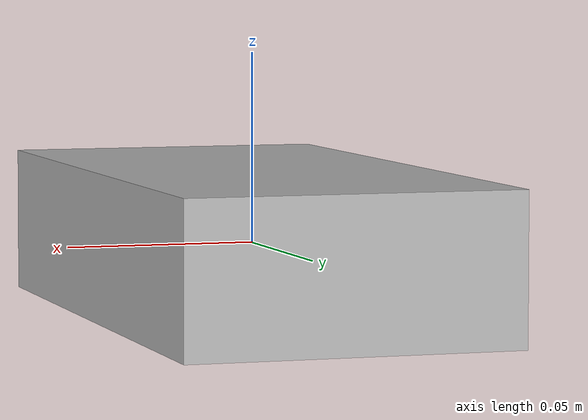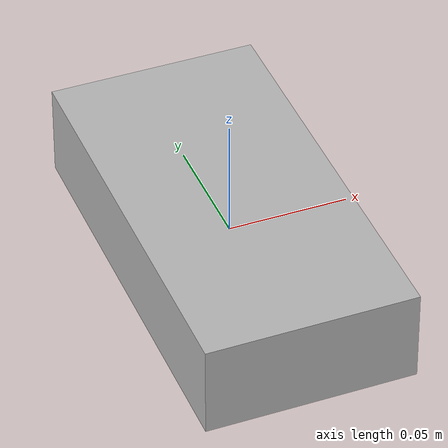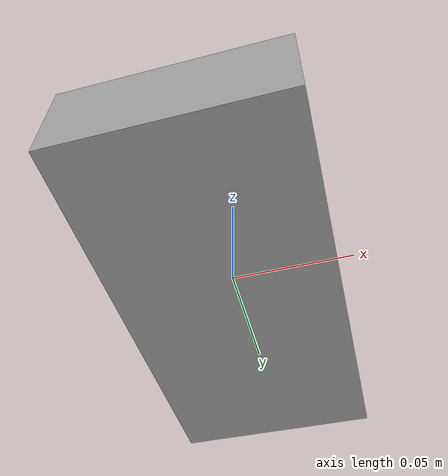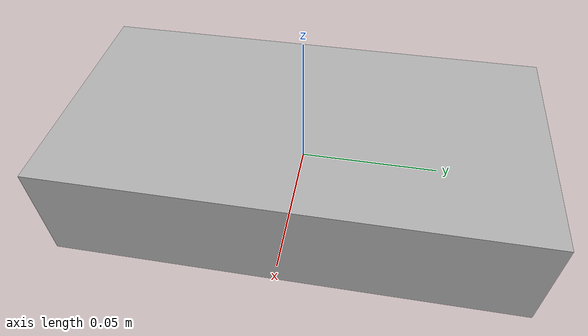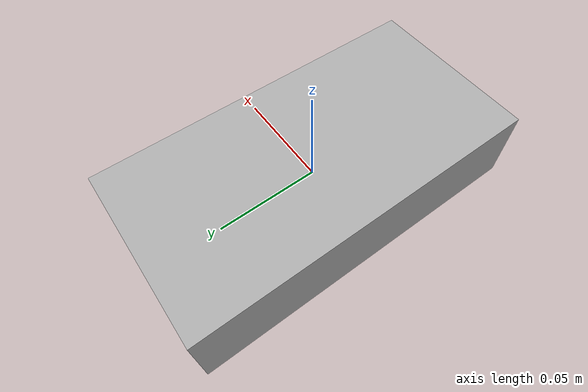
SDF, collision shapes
<?xml version="1.0"?>
<sdf version="1.7">
  <model name="004_sugar_box">
    <!--
    The inertial properties were calculated from the mass and dimensions given
    with the YCB dataset. The sugar box is treated as a constant density box,
    which matches the collision shape.
   -->
    <link name="base_link_sugar">
      <inertial>
        <mass>0.514000</mass>
        <inertia>
          <ixx>0.001418</ixx>
          <ixy>0</ixy>
          <ixz>0</ixz>
          <iyy>0.000455</iyy>
          <iyz>0</iyz>
          <izz>0.001699</izz>
        </inertia>
      </inertial>
      <visual name="base_link_sugar">
        <pose>-0.018  0.088  0.0039 -0.77 -1.52 2.36</pose>
        <geometry>
          <mesh>
            <uri>package://drake/manipulation/models/ycb/meshes/004_sugar_box_textured.obj</uri>
          </mesh>
        </geometry>
      </visual>
      <collision name="box_collision">
        <geometry>
          <box>
            <size>0.086700 0.170300 0.039100</size>
          </box>
        </geometry>
        <material>
          <diffuse>0 1 0 1.0</diffuse>
        </material>
      </collision>
      <collision name="point_collision1">
        <pose>0.043850 0.085650 0.020050 0 0 0 </pose>
        <geometry>
          <sphere>
            <radius>1e-7</radius>
          </sphere>
        </geometry>
      </collision>
      <collision name="point_collision2">
        <pose>0.043850 -0.085650 0.020050 0 0 0 </pose>
        <geometry>
          <sphere>
            <radius>1e-7</radius>
          </sphere>
        </geometry>
      </collision>
      <collision name="point_collision3">
        <pose>-0.043850 0.085650 0.020050 0 0 0 </pose>
        <geometry>
          <sphere>
            <radius>1e-7</radius>
          </sphere>
        </geometry>
      </collision>
      <collision name="point_collision4">
        <pose>-0.043850 -0.085650 0.020050 0 0 0 </pose>
        <geometry>
          <sphere>
            <radius>1e-7</radius>
          </sphere>
        </geometry>
      </collision>
      <collision name="point_collision5">
        <pose>0.043850 0.085650 -0.020050 0 0 0 </pose>
        <geometry>
          <sphere>
            <radius>1e-7</radius>
          </sphere>
        </geometry>
      </collision>
      <collision name="point_collision6">
        <pose>0.043850 -0.085650 -0.020050 0 0 0 </pose>
        <geometry>
          <sphere>
            <radius>1e-7</radius>
          </sphere>
        </geometry>
      </collision>
      <collision name="point_collision7">
        <pose>-0.043850 0.085650 -0.020050 0 0 0 </pose>
        <geometry>
          <sphere>
            <radius>1e-7</radius>
          </sphere>
        </geometry>
      </collision>
      <collision name="point_collision8">
        <pose>-0.043850 -0.085650 -0.020050 0 0 0 </pose>
        <geometry>
          <sphere>
            <radius>1e-7</radius>
          </sphere>
        </geometry>
      </collision>
    </link>
  </model>
</sdf>
